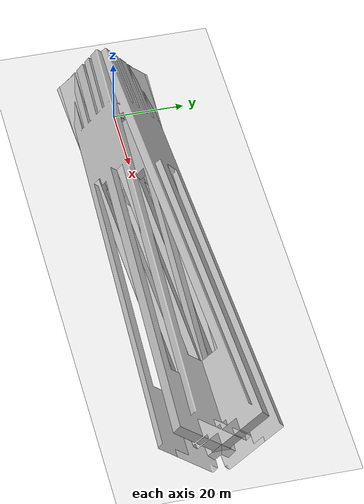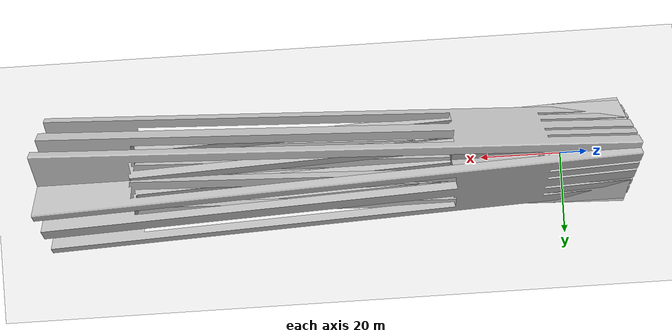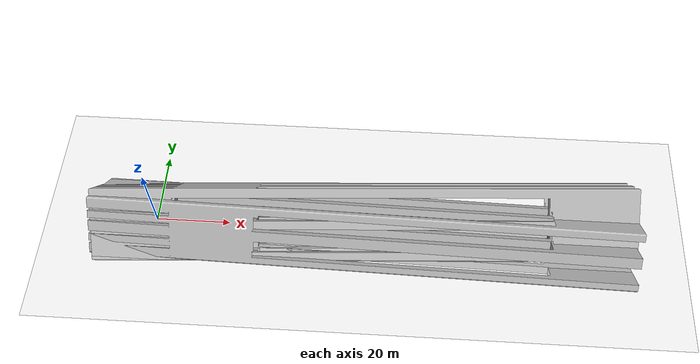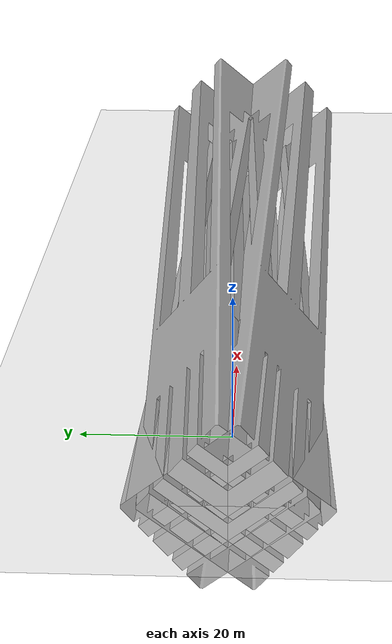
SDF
<?xml version="1.0" ?>
<sdf version="1.4">
  <world name="default">
    <physics type='ode'>
      <gravity>0 0 -9.81</gravity>
      <!-- max step size has to be a multiple of the desired task rate-->
      <max_step_size>0.001</max_step_size>
      <real_time_factor>1</real_time_factor>
    </physics>
    <!-- A global light source -->
    <include>
      <uri>model://sun</uri>
    </include>
    <!-- A ground plane -->
    <include>
      <uri>model://ground_plane</uri>
    </include>

    <!-- 50 deg chimney-->

    <include>
      <name>pallet2000x5000x140mm</name>
      <uri>model://pallet2000x5000x140mm</uri>
      <pose>6 -0.2 0 -0.05 0.87 1.57</pose>
    </include>

    <include>
      <name>pallet2000x5000x140mm</name>
      <uri>model://pallet2000x5000x140mm</uri>
      <pose>6 0.2 0.0 -0.05 -0.87  1.57 </pose>
    </include>

  </world>
</sdf>

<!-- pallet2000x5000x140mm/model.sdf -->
<sdf version="1.4">
	<model name="pallet480x1000x140mm">
		<static>true</static>
		<link name="link">
			<pose>0 0 0.06 0 0 0</pose>
			<collision name="collision">
				<geometry>
					<mesh>
						<uri>model://pallet2000x5000x140mm/mesh/pallet.dae</uri>
						<scale>1.95 100 1.59</scale>
					</mesh>
				</geometry>
			</collision>
			<visual name="visual">
				<geometry>
					<mesh>
						<uri>model://pallet2000x5000x140mm/mesh/pallet.dae</uri>
						<scale>1.95 100 1.59</scale>
					</mesh>
				</geometry>
			</visual>
		</link>
	</model>
</sdf>
